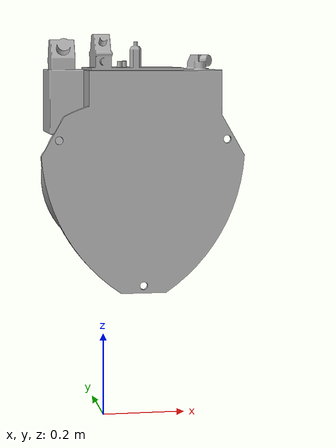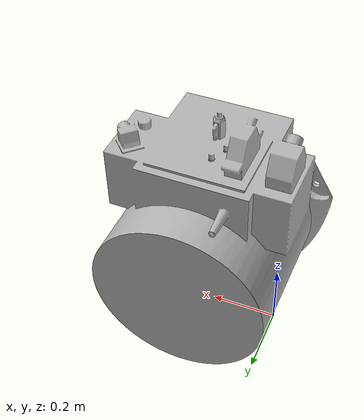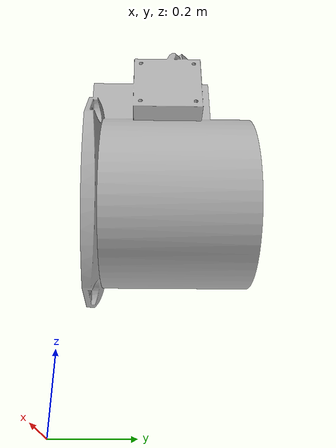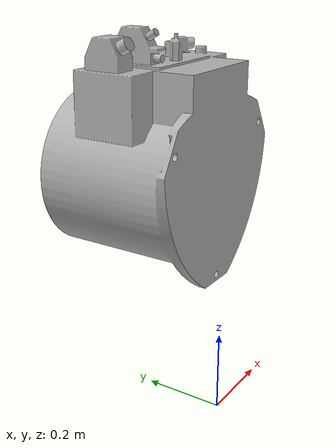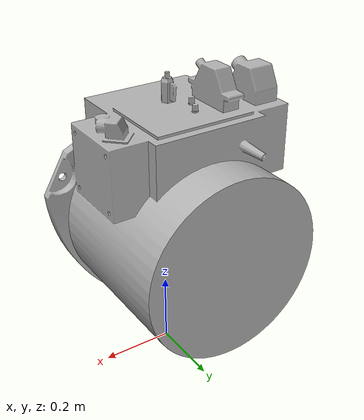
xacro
<?xml version="1.0" ?>
<robot name="kukaassembly" xmlns:xacro="http://www.ros.org/wiki/xacro">

<xacro:include filename="$(find kukaassembly_description)/urdf/materials.xacro" />
<xacro:include filename="$(find kukaassembly_description)/urdf/kukaassembly.trans" />
<xacro:include filename="$(find kukaassembly_description)/urdf/kukaassembly.gazebo" />
<link name="base_link">
  <inertial>
    <origin xyz="0.11156267412620541 0.26195464699806303 0.5872612747611157" rpy="0 0 0"/>
    <mass value="554.6548135471724"/>
    <inertia ixx="16.898939" iyy="17.302187" izz="13.643161" ixy="0.003707" iyz="0.478301" ixz="0.190903"/>
  </inertial>
  <visual>
    <origin xyz="0 0 0" rpy="0 0 0"/>
    <geometry>
      <mesh filename="package://kukaassembly_description/meshes/base_link.stl" scale="0.001 0.001 0.001"/>
    </geometry>
    <material name="silver"/>
  </visual>
  <collision>
    <origin xyz="0 0 0" rpy="0 0 0"/>
    <geometry>
      <mesh filename="package://kukaassembly_description/meshes/base_link.stl" scale="0.001 0.001 0.001"/>
    </geometry>
  </collision>
</link>

</robot>

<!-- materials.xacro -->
<robot name="kukaassembly" xmlns:xacro="http://www.ros.org/wiki/xacro" >

<material name="silver">
  <color rgba="0.700 0.700 0.700 1.000"/>
</material>

</robot>

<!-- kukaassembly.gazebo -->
<robot name="kukaassembly" xmlns:xacro="http://www.ros.org/wiki/xacro" >

<xacro:property name="body_color" value="Gazebo/Silver" />

<gazebo>
  <plugin name="control" filename="libgazebo_ros_control.so"/>
</gazebo>
<gazebo reference="base_link">
  <material>${body_color}</material>
  <mu1>0.2</mu1>
  <mu2>0.2</mu2>
  <selfCollide>true</selfCollide>
  <gravity>true</gravity>
</gazebo>

</robot>
